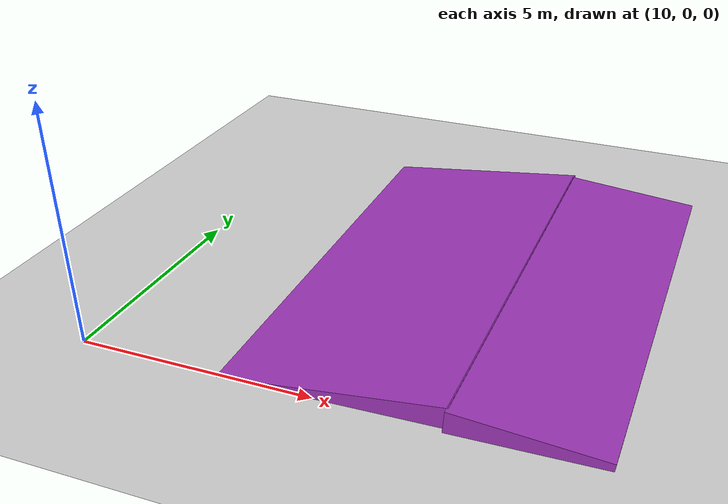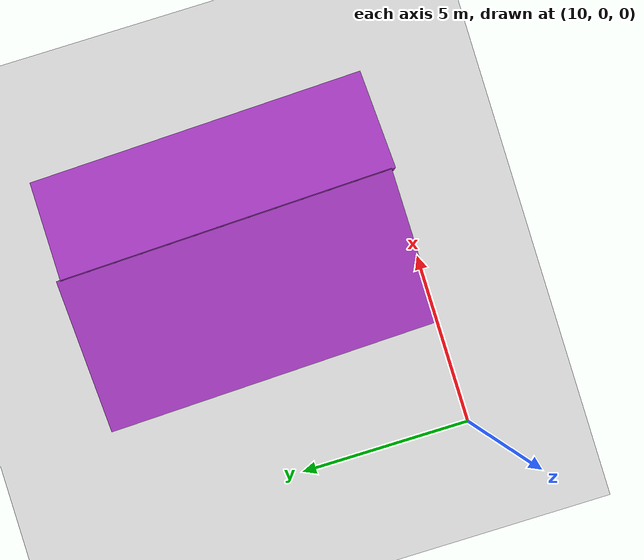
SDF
<sdf version='1.7'>
    <world name='default'>
        <light name='sun' type='directional'>
            <cast_shadows>1</cast_shadows>
            <pose>0 0 10 0 -0 0</pose>
            <diffuse>0.8 0.8 0.8 1</diffuse>
            <specular>0.2 0.2 0.2 1</specular>
            <attenuation>
                <range>1000</range>
                <constant>0.9</constant>
                <linear>0.01</linear>
                <quadratic>0.001</quadratic>
            </attenuation>
            <direction>-0.5 0.1 -0.9</direction>
            <spot>
                <inner_angle>0</inner_angle>
                <outer_angle>0</outer_angle>
                <falloff>0</falloff>
            </spot>
        </light>

        <model name="ground_plane">
            <static>true</static>
            <pose>0 0 0 0 0 0</pose>

            <link name='link'>
                <collision name='collision'>
                    <geometry>
                        <plane>
                        <normal>0 0 1</normal>
                        <size>250 250</size>
                        </plane>
                    </geometry>
                    <surface>
                        <contact>
                            <collide_bitmask>65535</collide_bitmask>
                            <ode/>
                        </contact>
                        <friction>
                            <ode>
                                <mu>1.0</mu>
                                <mu2>1.0</mu2>
                        <kp value="10.0" />
                        <kd value="10.0" />
                        <slip1>0.01</slip1>
                        <slip2>0.01</slip2>
                            </ode>
                            <torsional>
                                <ode/>
                            </torsional>
                        </friction>
                        <bounce>
                            <restitution_coefficient>0.0</restitution_coefficient>  <!-- Set restitution to zero -->
                        </bounce>
                    </surface>
                    <max_contacts>10</max_contacts>
                </collision>
                <visual name='visual'>
                    <cast_shadows>0</cast_shadows>
                    <geometry>
                        <plane>
                        <normal>0 0 1</normal>
                        <size>250 250</size>
                        </plane>
                    </geometry>
                    <material>
                        <script>
                        <uri>file://media/materials/scripts/gazebo.material</uri>
                        <name>Gazebo/Grey</name>
                        </script>
                    </material>
                </visual>
                <self_collide>0</self_collide>
                <enable_wind>0</enable_wind>
                <kinematic>0</kinematic>
            </link>
        </model>

        <model name='road_block_00'>
            <static>true</static>
            <link name='road_block_00_link'>
                <collision name='road_block_00_collision'>
                    <geometry>
                        <box>
                            <size>10 5 0.5</size>
                        </box>
                    </geometry>
                </collision>
                <visual name='road_block_00_visual'>
                    <geometry>
                        <box>
                            <size>10 5 0.5</size>
                        </box>
                    </geometry>
                    <material>
                        <script>
                            <uri>file://media/materials/scripts/gazebo.material</uri>
                            <name>Gazebo/Purple</name>
                        </script>
                    </material>
                </visual>
                <collision name="collision">
                    <pose>0 0 0 0 0 0</pose>
                    <geometry>
                        <box>
                            <size>10 5 0.5</size>
                        </box>
                    </geometry>
                    <surface>
                        <contact>
                            <collide_bitmask>65535</collide_bitmask>
                            <ode/>
                        </contact>
                        <friction>
                            <ode>
                                <mu>0.17</mu>
                                <mu2>0.17</mu2>
                        <kp value="1.0" />
                        <kd value="1.0" />
                        <slip1>0.5</slip1>
                        <slip2>0.5</slip2>
                            </ode>
                            <torsional>
                                <ode/>
                            </torsional>
                        </friction>
                        <bounce>
                            <restitution_coefficient>0.0</restitution_coefficient>  <!-- Set restitution to zero -->
                        </bounce>
                    </surface>
                    <max_contacts>10</max_contacts>
                </collision>
            </link>
            <pose>15 5 -0.05 -0.1 0 1.6</pose>
        </model>

        <model name='road_block_01'>
            <static>true</static>
            <link name='road_block_01_link'>
                <collision name='road_block_01_collision'>
                    <geometry>
                        <box>
                            <size>10 3 0.5</size>
                        </box>
                    </geometry>
                </collision>
                <visual name='road_block_01_visual'>
                    <geometry>
                        <box>
                            <size>10 3 0.5</size>
                        </box>
                    </geometry>
                    <material>
                        <script>
                            <uri>file://media/materials/scripts/gazebo.material</uri>
                            <name>Gazebo/Purple</name>
                        </script>
                    </material>
                </visual>
                <collision name="collision">
                    <pose>0 0 0 0 0 0</pose>
                    <geometry>
                        <box>
                            <size>10 3 0.5</size>
                        </box>
                    </geometry>
                    <surface>
                        <contact>
                            <collide_bitmask>65535</collide_bitmask>
                            <ode/>
                        </contact>
                        <friction>
                            <ode>
                                <mu>0.1</mu>
                                <mu2>0.1</mu2>
                        <kp value="1.0" />
                        <kd value="1.0" />
                        <slip1>0.8</slip1>
                        <slip2>0.8</slip2>
                            </ode>
                            <torsional>
                                <ode/>
                            </torsional>
                        </friction>
                        <bounce>
                            <restitution_coefficient>0.0</restitution_coefficient>  <!-- Set restitution to zero -->
                        </bounce>
                    </surface>
                    <max_contacts>10</max_contacts>
                </collision>
            </link>
            <pose>18.9 5 0.05 0.1 0 1.6</pose>
        </model>

        <gravity>0 0 -9.8</gravity>
        <magnetic_field>6e-06 2.3e-05 -4.2e-05</magnetic_field>
        <atmosphere type='adiabatic'/>
        <physics type='ode'>
            <max_step_size>0.001</max_step_size>
            <real_time_factor>1</real_time_factor>
            <real_time_update_rate>1000</real_time_update_rate>
        </physics>
        <scene>
            <ambient>0.4 0.4 0.4 1</ambient>
            <background>0.7 0.7 0.7 1</background>
            <shadows>1</shadows>
        </scene>
        <wind/>
        <spherical_coordinates>
            <!-- Minnesota: never been there -->
            <surface_model>EARTH_WGS84</surface_model>
            <latitude_deg>44.98</latitude_deg>
            <longitude_deg>-93.27</longitude_deg>
            <elevation>256</elevation>
            <heading_deg>0</heading_deg>
        </spherical_coordinates>

        <gui fullscreen='0'>
            <camera name='user_camera'>
                    <pose>36.1533 -34.3941 13.0882 0 0.275643 2.35619</pose>
                    <view_controller>orbit</view_controller>
                    <projection_type>perspective</projection_type>
            </camera>
        </gui>

        <plugin name="gazebo_ros_state" filename="libgazebo_ros_state.so">
            <ros>
                <namespace>/gazebo</namespace>
            </ros>

            <update_rate>1.0</update_rate>
        </plugin>

    </world>
</sdf>
